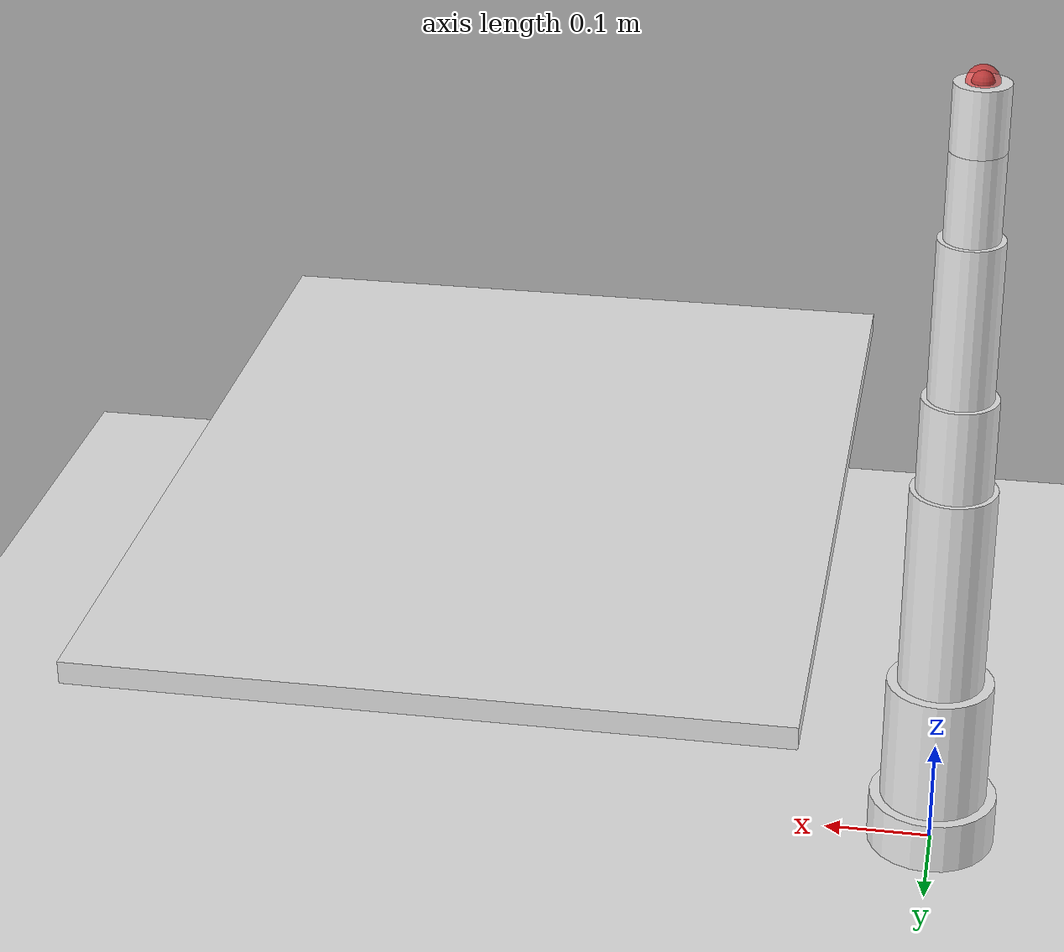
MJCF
<?xml version="1.0" encoding="utf-8"?>
<mujoco model="lite6">
  <compiler angle="radian" coordinate="local" inertiafromgeom="auto"/>

  <option timestep="0.001" gravity="0 0 -9.81" integrator="implicit">
    <flag warmstart="enable"/>
  </option>

  <default>
    <joint armature="0.01" damping="0.5" limited="true"/>
    <geom condim="3" friction="1 0.5 0.5" rgba="0.9 0.9 0.9 1"/>
    <position kp="100" kv="10"/>
  </default>

  <asset>
    <texture type="skybox" builtin="gradient" rgb1="0.6 0.6 0.8" rgb2="0.2 0.2 0.3" width="512" height="512"/>
    <texture name="floor_tex" type="2d" builtin="checker" rgb1="0.8 0.8 0.8" rgb2="0.6 0.6 0.6" width="512" height="512"/>
    <material name="floor_mat" texture="floor_tex" texrepeat="10 10"/>
    <material name="base_mat" rgba="0.3 0.3 0.3 1"/>
    <material name="link_mat" rgba="1.0 1.0 1.0 1"/>
    <material name="end_mat" rgba="0.4 0.4 0.4 1"/>
    <material name="table_mat" rgba="0.7 0.5 0.3 1"/>
  </asset>

  <worldbody>
    <!-- Ground plane -->
    <geom name="floor" type="plane" size="5 5 0.1" material="floor_mat"/>

    <!-- Lite6 Robot Arm -->
    <body name="base_link" pos="0 0 0.025">
      <geom name="base_geom" type="cylinder" size="0.06 0.025" material="base_mat" mass="2.0"/>

      <!-- Link 1 - rotates around Z -->
      <body name="link1" pos="0 0 0.025">
        <joint name="joint1" type="hinge" axis="0 0 1" range="-6.2832 6.2832" damping="0.5"/>
        <geom name="link1_geom" type="cylinder" size="0.05 0.0615" pos="0 0 0.0615" material="link_mat" mass="1.5"/>

        <!-- Link 2 - rotates around Y -->
        <body name="link2" pos="0 0 0.123">
          <joint name="joint2" type="hinge" axis="0 1 0" range="-2.059 2.094" damping="0.5"/>
          <geom name="link2_geom" type="cylinder" size="0.04 0.1" pos="0 0 0.1" material="link_mat" mass="1.2"/>

          <!-- Link 3 - rotates around Y -->
          <body name="link3" pos="0 0 0.2">
            <joint name="joint3" type="hinge" axis="0 1 0" range="-0.192 3.927" damping="0.3"/>
            <geom name="link3_geom" type="cylinder" size="0.035 0.045" pos="0 0 0.045" material="link_mat" mass="0.8"/>

            <!-- Link 4 - rotates around Z -->
            <body name="link4" pos="0 0 0.09">
              <joint name="joint4" type="hinge" axis="0 0 1" range="-6.2832 6.2832" damping="0.2"/>
              <geom name="link4_geom" type="cylinder" size="0.03 0.075" pos="0 0 0.075" material="link_mat" mass="0.6"/>

              <!-- Link 5 - rotates around Y -->
              <body name="link5" pos="0 0 0.15">
                <joint name="joint5" type="hinge" axis="0 1 0" range="-1.692 3.141" damping="0.2"/>
                <geom name="link5_geom" type="cylinder" size="0.025 0.04" pos="0 0 0.04" material="link_mat" mass="0.4"/>

                <!-- Link 6 (end effector) - rotates around Z -->
                <body name="link6" pos="0 0 0.08">
                  <joint name="joint6" type="hinge" axis="0 0 1" range="-6.2832 6.2832" damping="0.1"/>
                  <geom name="link6_geom" type="cylinder" size="0.025 0.03" pos="0 0 0.03" material="end_mat" mass="0.2"/>

                  <!-- Force/torque sensor site at end effector -->
                  <site name="ft_sensor" pos="0 0 0.06" size="0.01"/>

                  <!-- End effector site for visualization -->
                  <site name="end_effector" pos="0 0 0.06" size="0.015" rgba="1 0 0 0.5"/>
                </body>
              </body>
            </body>
          </body>
        </body>
      </body>
    </body>

    <!-- Table (work surface) -->
    <body name="table" pos="0.4 0 0.35">
      <geom name="table_geom" type="box" size="0.3 0.4 0.01" material="table_mat"/>
    </body>

    <!-- Light -->
    <light name="spotlight" pos="0 0 3" dir="0 0 -1" diffuse="0.8 0.8 0.8" specular="0.2 0.2 0.2"/>
  </worldbody>

  <!-- Actuators for position control -->
  <actuator>
    <position name="joint1_ctrl" joint="joint1" kp="100" kv="10" ctrlrange="-6.2832 6.2832"/>
    <position name="joint2_ctrl" joint="joint2" kp="100" kv="10" ctrlrange="-2.059 2.094"/>
    <position name="joint3_ctrl" joint="joint3" kp="80" kv="8" ctrlrange="-0.192 3.927"/>
    <position name="joint4_ctrl" joint="joint4" kp="50" kv="5" ctrlrange="-6.2832 6.2832"/>
    <position name="joint5_ctrl" joint="joint5" kp="40" kv="4" ctrlrange="-1.692 3.141"/>
    <position name="joint6_ctrl" joint="joint6" kp="30" kv="3" ctrlrange="-6.2832 6.2832"/>
  </actuator>

  <!-- Sensors -->
  <sensor>
    <!-- Force/torque sensor at end effector -->
    <force name="ft_force" site="ft_sensor"/>
    <torque name="ft_torque" site="ft_sensor"/>

    <!-- Joint position sensors -->
    <jointpos name="joint1_pos" joint="joint1"/>
    <jointpos name="joint2_pos" joint="joint2"/>
    <jointpos name="joint3_pos" joint="joint3"/>
    <jointpos name="joint4_pos" joint="joint4"/>
    <jointpos name="joint5_pos" joint="joint5"/>
    <jointpos name="joint6_pos" joint="joint6"/>

    <!-- Joint velocity sensors -->
    <jointvel name="joint1_vel" joint="joint1"/>
    <jointvel name="joint2_vel" joint="joint2"/>
    <jointvel name="joint3_vel" joint="joint3"/>
    <jointvel name="joint4_vel" joint="joint4"/>
    <jointvel name="joint5_vel" joint="joint5"/>
    <jointvel name="joint6_vel" joint="joint6"/>
  </sensor>
</mujoco>
